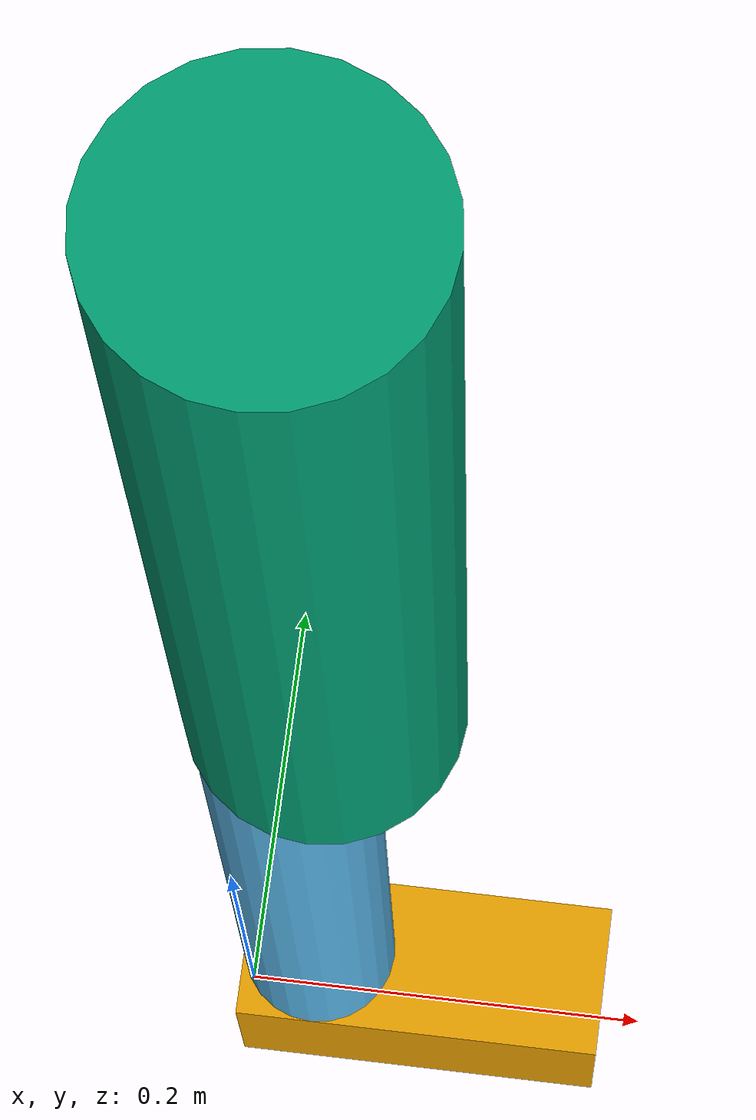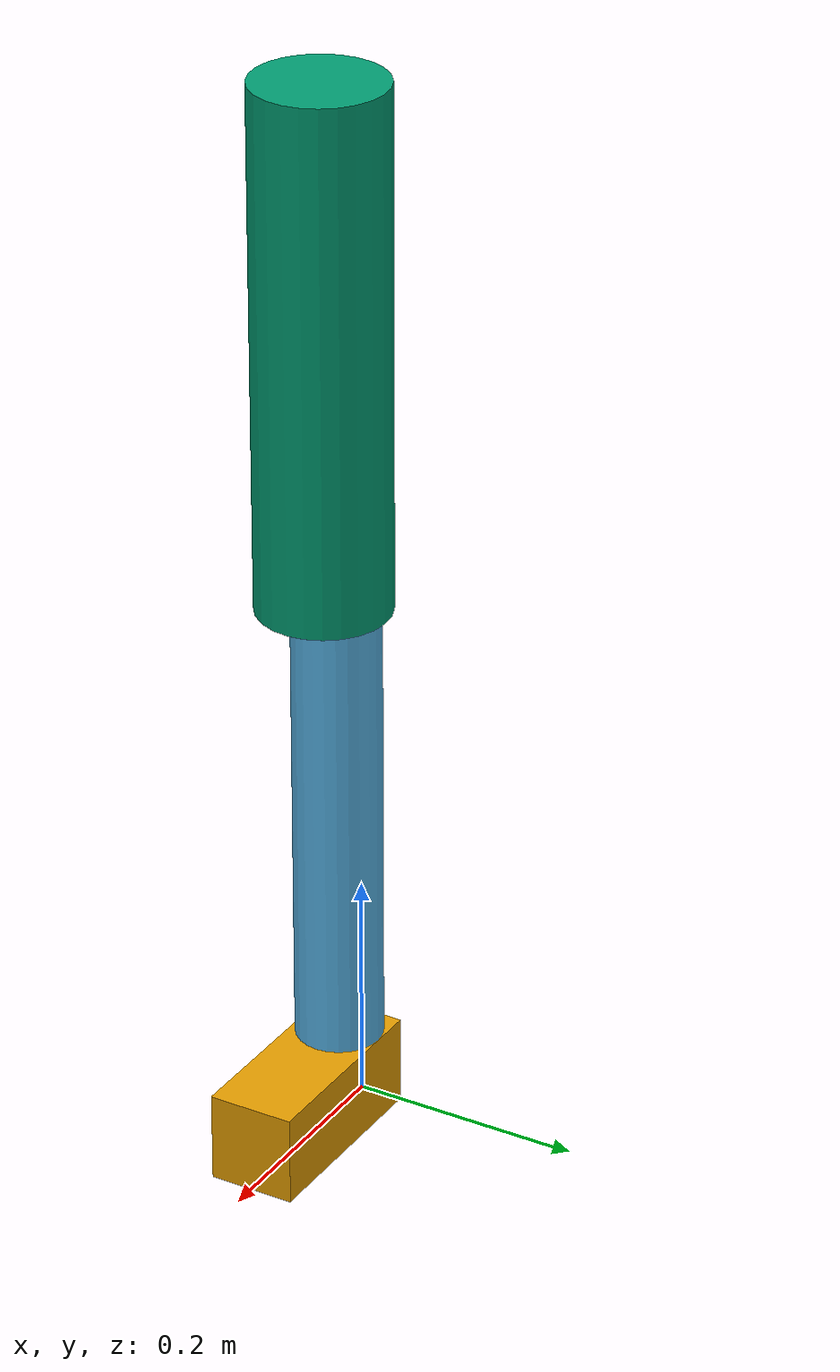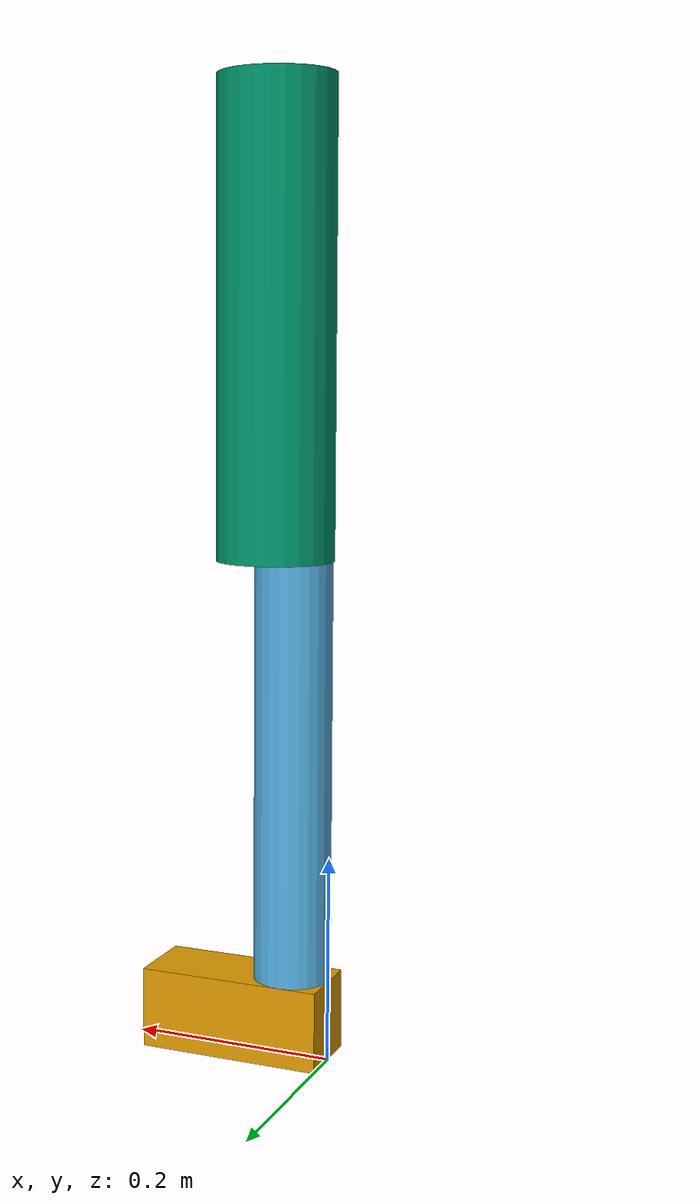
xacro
<?xml version="1.0" ?>

<robot name="human" xmlns:xacro="http://www.ros.org/wiki/xacro">

   <!-- Lower Body pelvis and both legs and feet -->

   <link name="right_foot">

        <inertial>
          <mass value="0.8086"/>
          <origin xyz="0.08991 0 0.03925" rpy="0 0 0" />
          <inertia ixx="0.00079209" iyy="0.0025944" izz="0.0025558" ixy="0" ixz="0" iyz="0"/>
        </inertial>

        <collision>
          <origin xyz="0.08991 0 0.03925" rpy="0 0 0" />
          <geometry>
             <box size="0.17983    0.074775    0.078509"/>
          </geometry>
        </collision>

        <visual>
          <origin xyz="0.08991 0 0.03925" rpy="0 0 0" />
          <geometry>
             <box size="0.17983    0.074775    0.078509"/>
          </geometry>
        </visual>

   </link>

   <joint name="jright_ankle" type="revolute">
     <axis xyz="0 1 0"/>
     <limit effort="30" velocity="1.0" lower="0" upper="1.5" />
     <origin xyz="0.018694 0 0.078509" rpy="0 0 0"/>
     <parent link="right_foot"/>
     <child link="right_lower_leg"/>
   </joint>

   <transmission name="trans_jright_ankle">
     <type>transmission_interface/SimpleTransmission</type>
     <joint name="jright_ankle">
       <hardwareInterface>hardware_interface/EffortJointInterface</hardwareInterface>
     </joint>
     <actuator name="motor_jright_ankle">
       <hardwareInterface>hardware_interface/EffortJointInterface</hardwareInterface>
       <mechanicalReduction>1</mechanicalReduction>
     </actuator>
   </transmission>

   <link name="right_lower_leg">

        <inertial>
          <mass value="2.2703"/>
          <origin xyz="0.018694 0 0.20304" rpy="0 0 0" />
          <inertia ixx="0.031992" iyy="0.031992" izz="0.0015867" ixy="0" ixz="0" iyz="0"/>
        </inertial>

        <collision>
          <origin xyz="0.018694 0 0.20304" rpy="0 0 0" />
          <geometry>
             <cylinder length="0.40608" radius="0.037388"/>
          </geometry>
        </collision>

        <visual>
          <origin xyz="0.018694 0 0.20304" rpy="0 0 0" />
          <geometry>
             <cylinder length="0.40608" radius="0.037388"/>
          </geometry>
        </visual>
   </link>

   <joint name="jright_knee" type="revolute">
     <axis xyz="0 1 0"/>
     <limit effort="30" velocity="1.0" lower="0" upper="1.5" />
     <origin xyz="0.018694 0 0.40608" rpy="0 0 0"/>
     <parent link="right_lower_leg"/>
     <child link="right_upper_leg"/>
   </joint>

   <transmission name="trans_jright_knee">
     <type>transmission_interface/SimpleTransmission</type>
     <joint name="jright_knee">
       <hardwareInterface>hardware_interface/EffortJointInterface</hardwareInterface>
     </joint>
     <actuator name="motor_jright_knee">
       <hardwareInterface>hardware_interface/EffortJointInterface</hardwareInterface>
       <mechanicalReduction>1</mechanicalReduction>
     </actuator>
   </transmission>

   <link name="right_upper_leg">

        <inertial>
          <mass value="7.775"/>
          <origin xyz="0.018694 0 0.22449" rpy="0 0 0" />
          <inertia ixx="0.13681" iyy="0.13681" izz="0.01241" ixy="0" ixz="0" iyz="0"/>
        </inertial>

        <collision>
          <origin xyz="0.018694 0 0.22449" rpy="0 0 0" />
          <geometry>
             <cylinder length="0.44898" radius="0.0565"/>
          </geometry>
        </collision>

        <visual>
          <origin xyz="0.018694 0 0.22449" rpy="0 0 0" />
          <geometry>
             <cylinder length="0.44898" radius="0.0565"/>
          </geometry>
        </visual>
   </link>

<!-- Upper Body from pelvis to head without arms -->

   <!-- Joint b/w pelvis and Link L5 -->

    <!-- Link L5 -->

   <!-- Joint b/w pelvis and Link L3 -->
   <!-- Link L3 -->
     <!-- Joint b/w pelvis and Link T12 -->

     <!-- Link T12 -->

   <!-- Joint b/w pelvis and Link T8 -->
<!-- Link T8 -->

   <!--  Links from Right shoulder to hand-->

   <gazebo>
      <plugin name="gazebo_ros_control" filename="libgazebo_ros_control.so">
      </plugin>
   </gazebo>

</robot>
